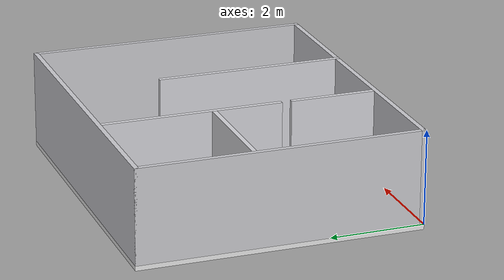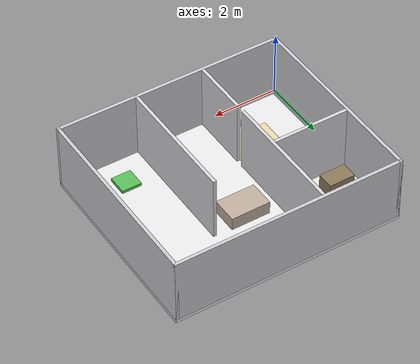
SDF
<?xml version="1.0" ?>
<sdf version="1.8">
  <world name="kaiti_house_world">
    <plugin name="ignition::gazebo::systems::Physics" filename="libignition-gazebo-physics-system.so"/>
    <plugin name="ignition::gazebo::systems::UserCommands" filename="libignition-gazebo-user-commands-system.so"/>
    <plugin name="ignition::gazebo::systems::SceneBroadcaster" filename="libignition-gazebo-scene-broadcaster-system.so"/>
    <gravity>0 0 -9.8</gravity>
    <magnetic_field>6e-06 2.3e-05 -4.2e-05</magnetic_field>
    <scene>
      <ambient>1 1 1 1</ambient>
      <background>0.3 0.7 0.9 1</background>
      <shadows>0</shadows>
      <grid>false</grid>
    </scene>
    <physics type="ode">
      <max_step_size>0.004</max_step_size>
      <real_time_factor>1.0</real_time_factor>
      <real_time_update_rate>250</real_time_update_rate>
    </physics>

    <include>
      <uri>model://sun</uri>
    </include>

    <model name="floor">
      <static>true</static>
      <link name="floor_link">
        <collision name="floor_collision">
          <geometry>
            <box>
              <size>7 6 0.1</size>
            </box>
          </geometry>
        </collision>
        <visual name="floor_visual">
          <geometry>
            <box>
              <size>7 6 0.1</size>
            </box>
          </geometry>
          <material>
            <ambient>0.92 0.92 0.92 1</ambient>
            <diffuse>0.92 0.92 0.92 1</diffuse>
          </material>
        </visual>
        <pose>3.5 3.0 -0.05 0 0 0</pose>
      </link>
    </model>

    <model name="outer_walls">
      <static>true</static>
      <link name="walls">
        <pose>0 0 0 0 0 0</pose>
        <collision name="north_wall_collision">
          <pose>3.5 5.95 1.0 0 0 0</pose>
          <geometry><box><size>7.0 0.1 2.0</size></box></geometry>
        </collision>
        <collision name="south_wall_collision">
          <pose>3.5 0.05 1.0 0 0 0</pose>
          <geometry><box><size>7.0 0.1 2.0</size></box></geometry>
        </collision>
        <collision name="west_wall_collision">
          <pose>0.05 3.0 1.0 0 0 0</pose>
          <geometry><box><size>0.1 6.0 2.0</size></box></geometry>
        </collision>
        <collision name="east_wall_collision">
          <pose>6.95 3.0 1.0 0 0 0</pose>
          <geometry><box><size>0.1 6.0 2.0</size></box></geometry>
        </collision>

        <visual name="north_wall_visual">
          <pose>3.5 5.95 1.0 0 0 0</pose>
          <geometry><box><size>7.0 0.1 2.0</size></box></geometry>
          <material><ambient>0.8 0.8 0.82 1</ambient><diffuse>0.8 0.8 0.82 1</diffuse></material>
        </visual>
        <visual name="south_wall_visual">
          <pose>3.5 0.05 1.0 0 0 0</pose>
          <geometry><box><size>7.0 0.1 2.0</size></box></geometry>
          <material><ambient>0.8 0.8 0.82 1</ambient><diffuse>0.8 0.8 0.82 1</diffuse></material>
        </visual>
        <visual name="west_wall_visual">
          <pose>0.05 3.0 1.0 0 0 0</pose>
          <geometry><box><size>0.1 6.0 2.0</size></box></geometry>
          <material><ambient>0.8 0.8 0.82 1</ambient><diffuse>0.8 0.8 0.82 1</diffuse></material>
        </visual>
        <visual name="east_wall_visual">
          <pose>6.95 3.0 1.0 0 0 0</pose>
          <geometry><box><size>0.1 6.0 2.0</size></box></geometry>
          <material><ambient>0.8 0.8 0.82 1</ambient><diffuse>0.8 0.8 0.82 1</diffuse></material>
        </visual>
      </link>
    </model>

    <model name="inner_walls">
      <static>true</static>
      <link name="inner_walls_link">
        <collision name="room_split_1">
          <pose>2.45 1.0 1.0 0 0 0</pose>
          <geometry><box><size>0.1 1.8 2.0</size></box></geometry>
        </collision>
        <collision name="room_split_2">
          <pose>2.45 4.0 1.0 0 0 0</pose>
          <geometry><box><size>0.1 3.8 2.0</size></box></geometry>
        </collision>
        <collision name="room_split_3">
          <pose>4.55 2.0 1.0 0 0 0</pose>
          <geometry><box><size>0.1 4.0 2.0</size></box></geometry>
        </collision>
        <collision name="room_split_4">
          <pose>1.25 3.55 1.0 0 0 0</pose>
          <geometry><box><size>2.3 0.1 2.0</size></box></geometry>
        </collision>
        <visual name="room_split_1_visual">
          <pose>2.45 1.0 1.0 0 0 0</pose>
          <geometry><box><size>0.1 1.8 2.0</size></box></geometry>
          <material><ambient>0.84 0.84 0.86 1</ambient><diffuse>0.84 0.84 0.86 1</diffuse></material>
        </visual>
        <visual name="room_split_2_visual">
          <pose>2.45 4.0 1.0 0 0 0</pose>
          <geometry><box><size>0.1 3.8 2.0</size></box></geometry>
          <material><ambient>0.84 0.84 0.86 1</ambient><diffuse>0.84 0.84 0.86 1</diffuse></material>
        </visual>
        <visual name="room_split_3_visual">
          <pose>4.55 2.0 1.0 0 0 0</pose>
          <geometry><box><size>0.1 4.0 2.0</size></box></geometry>
          <material><ambient>0.84 0.84 0.86 1</ambient><diffuse>0.84 0.84 0.86 1</diffuse></material>
        </visual>
        <visual name="room_split_4_visual">
          <pose>1.25 3.55 1.0 0 0 0</pose>
          <geometry><box><size>2.3 0.1 2.0</size></box></geometry>
          <material><ambient>0.84 0.84 0.86 1</ambient><diffuse>0.84 0.84 0.86 1</diffuse></material>
        </visual>
      </link>
    </model>

    <model name="furniture">
      <static>true</static>
      <link name="furniture_link">
        <visual name="bed_B">
          <pose>3.45 3.65 0.2 0 0 0</pose>
          <geometry><box><size>1.2 0.8 0.4</size></box></geometry>
          <material><ambient>0.75 0.68 0.62 1</ambient><diffuse>0.75 0.68 0.62 1</diffuse></material>
        </visual>
        <visual name="charger_D_visual">
          <pose>5.5 1.0 0.05 0 0 0</pose>
          <geometry><box><size>0.6 0.6 0.1</size></box></geometry>
          <material><ambient>0.35 0.75 0.35 0.9</ambient><diffuse>0.35 0.75 0.35 0.9</diffuse></material>
        </visual>
        <visual name="supply_shelf_S_visual">
          <pose>1.0 4.5 0.4 0 0 0</pose>
          <geometry><box><size>0.8 0.5 0.8</size></box></geometry>
          <material><ambient>0.55 0.48 0.35 1</ambient><diffuse>0.55 0.48 0.35 1</diffuse></material>
        </visual>
      </link>
    </model>

    <model name="region_markers">
      <static>true</static>
      <link name="region_markers_link">
        <visual name="marker_corridor_H">
          <pose>1.7 2.0 0.01 0 0 0</pose>
          <geometry><box><size>1.4 2.0 0.02</size></box></geometry>
          <material><ambient>0.95 0.8 0.2 0.35</ambient><diffuse>0.95 0.8 0.2 0.35</diffuse></material>
        </visual>
        <visual name="marker_event_zone_B">
          <pose>3.5 3.5 0.01 0 0 0</pose>
          <geometry><box><size>1.0 1.0 0.02</size></box></geometry>
          <material><ambient>0.85 0.2 0.2 0.35</ambient><diffuse>0.85 0.2 0.2 0.35</diffuse></material>
        </visual>
        <visual name="marker_supply_S">
          <pose>1.0 4.5 0.01 0 0 0</pose>
          <geometry><box><size>1.0 1.0 0.02</size></box></geometry>
          <material><ambient>0.2 0.7 0.9 0.35</ambient><diffuse>0.2 0.7 0.9 0.35</diffuse></material>
        </visual>
      </link>
    </model>
  </world>
</sdf>
